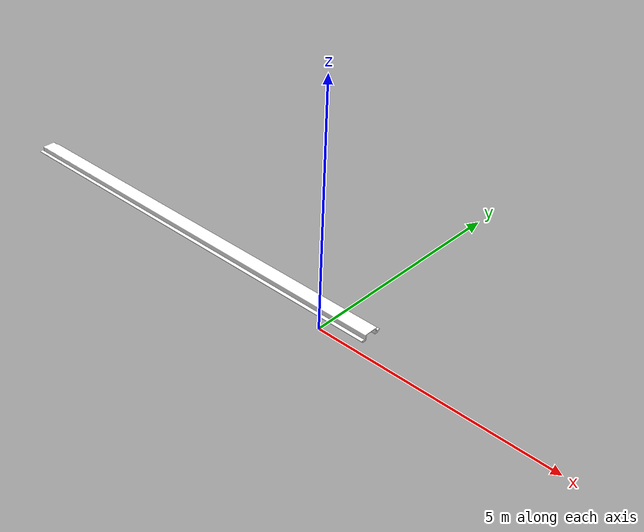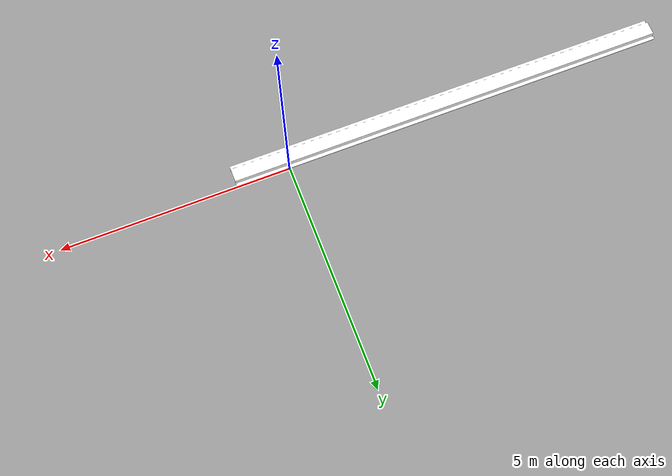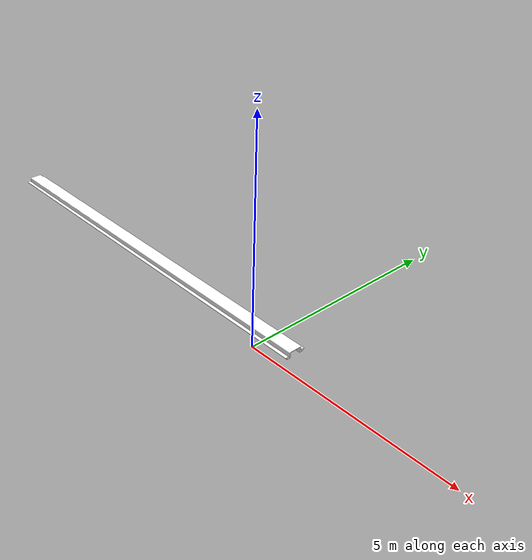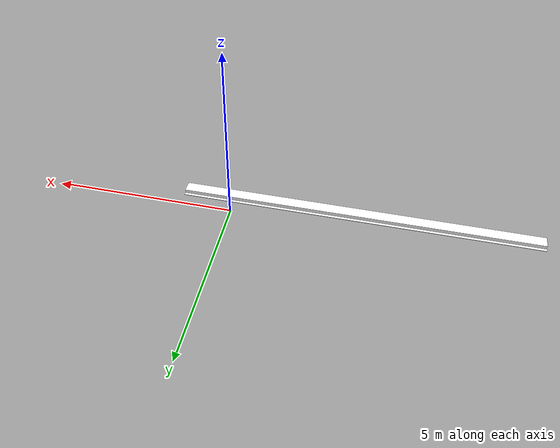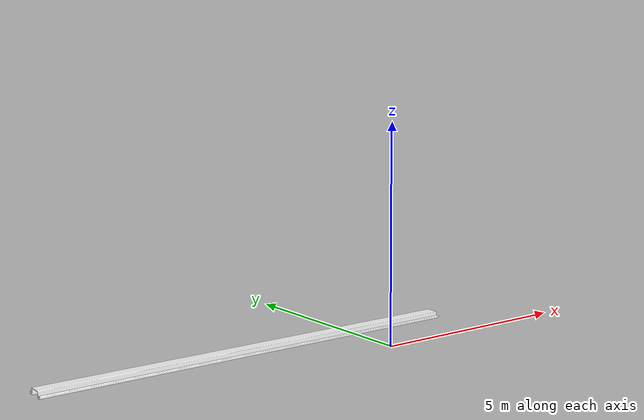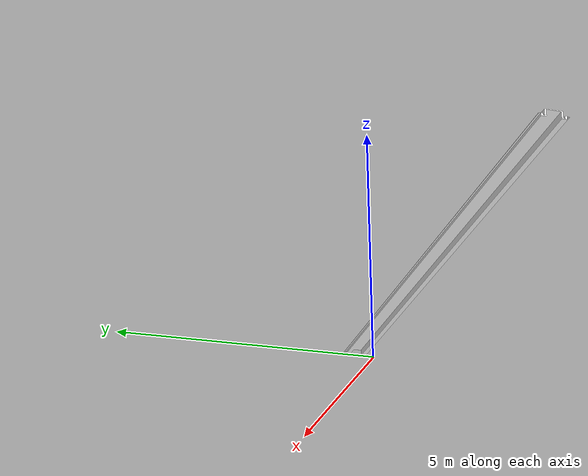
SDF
<sdf version="1.6">
  <model name="metal_755342">
    <static>true</static>
    <link name="link">
      <collision name="collision">
        <geometry>
          <box>
            <size>1 1 1</size>
          </box>
        </geometry>
      </collision>
      <visual name="metal">
        <geometry>
          <mesh>
            <uri>model://metal_755342/meshes/metal.dae</uri>
            <scale>0.015 0.015 0.015</scale>
          </mesh>
        </geometry>
        <material>
          <diffuse>1.0 1.0 1.0</diffuse>
        </material>
      </visual>
    </link>

  </model>
</sdf>
